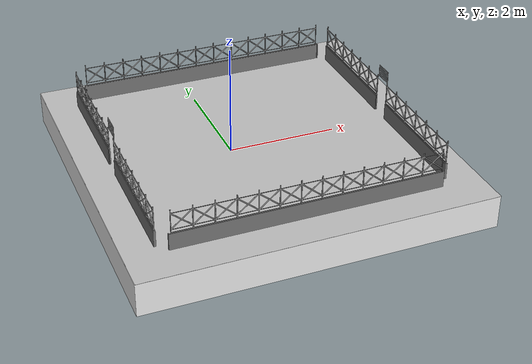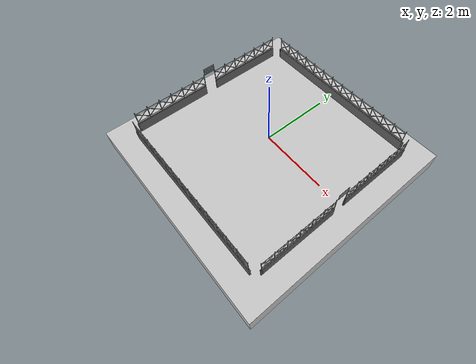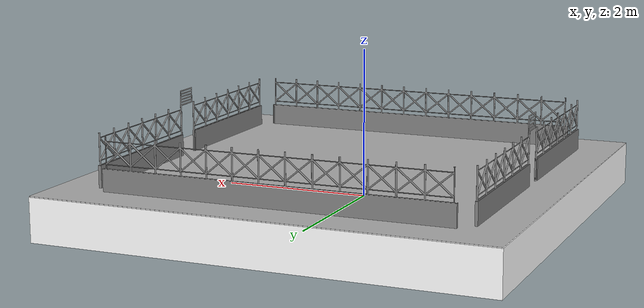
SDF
<?xml version='1.0'?>
<sdf version='1.7'>
  <model name='arene_with_map'>
    <model name='arene'>
      <static>1</static>
      <link name='base_link'>
        <pose>-2.5 2.5 0 1.57 -0 0</pose>
        <visual name='base_visual'>
          <geometry>
            <mesh>
              <uri>model://arene/meshes/arene_base.STL</uri>
              <scale>0.001 0.001 0.001</scale>
            </mesh>
          </geometry>
          <material>
            <ambient>0.9 0.9 0.9 1</ambient>
            <diffuse>1 1 1 1</diffuse>
            <specular>0.5 0.5 0.5 1</specular>
          </material>
        </visual>
        <collision name='base_collision'>
          <pose>3.13 0.3 3.13 1.57 -0 0</pose>
          <geometry>
            <box>
              <size>6.25 6.25 0.6</size>
            </box>
          </geometry>
        </collision>
        <inertial>
          <mass>100</mass>
          <inertia>
            <ixx>0</ixx>
            <ixy>0</ixy>
            <ixz>0</ixz>
            <iyy>0</iyy>
            <iyz>0</iyz>
            <izz>0</izz>
          </inertia>
        </inertial>
      </link>
      <link name='frame_left_link'>
        <pose>-2.38 1.93 0.6 1.57 -0 0</pose>
        <visual name='frame_left_visual'>
          <pose>0.62 0 0 0 -0 0</pose>
          <geometry>
            <mesh>
              <uri>model://arene/meshes/arene_frame.STL</uri>
              <scale>0.001 0.001 0.001</scale>
            </mesh>
          </geometry>
          <material>
            <ambient>0.5 0.5 0.5 1</ambient>
            <diffuse>0.5 0.5 0.5 1</diffuse>
            <specular>0.5 0.5 0.5 1</specular>
          </material>
        </visual>
        <collision name='frame_left_collision'>
          <pose>3 0.3 0 1.57 -0 0</pose>
          <geometry>
            <box>
              <size>5 0.1 0.6</size>
            </box>
          </geometry>
        </collision>
        <inertial>
          <mass>25</mass>
          <inertia>
            <ixx>0</ixx>
            <ixy>0</ixy>
            <ixz>0</ixz>
            <iyy>0</iyy>
            <iyz>0</iyz>
            <izz>0</izz>
          </inertia>
        </inertial>
      </link>
      <link name='frame_right_link'>
        <pose>3.635 -3.15 0.6 1.57 0 3.14</pose>
        <visual name='frame_right_visual'>
          <pose>0.63 0 0 0 -0 0</pose>
          <geometry>
            <mesh>
              <uri>model://arene/meshes/arene_frame.STL</uri>
              <scale>0.001 0.001 0.001</scale>
            </mesh>
          </geometry>
          <material>
            <ambient>0.5 0.5 0.5 1</ambient>
            <diffuse>0.5 0.5 0.5 1</diffuse>
            <specular>0.5 0.5 0.5 1</specular>
          </material>
        </visual>
        <collision name='frame_right_collision'>
          <pose>3 0.3 0 1.57 -0 0</pose>
          <geometry>
            <box>
              <size>5 0.1 0.6</size>
            </box>
          </geometry>
        </collision>
        <inertial>
          <mass>25</mass>
          <inertia>
            <ixx>0</ixx>
            <ixy>0</ixy>
            <ixz>0</ixz>
            <iyy>0</iyy>
            <iyz>0</iyz>
            <izz>0</izz>
          </inertia>
        </inertial>
      </link>
      <link name='frame_front_link'>
        <pose>-2.59 2.38 0.6 1.57 -0 0</pose>
        <visual name='frame_front_visual'>
          <pose>0.63 0 0.63 0 -0 0</pose>
          <geometry>
            <mesh>
              <uri>model://arene/meshes/arene_frame_with_door.STL</uri>
              <scale>0.001 0.001 0.001</scale>
            </mesh>
          </geometry>
          <material>
            <ambient>0.5 0.5 0.5 1</ambient>
            <diffuse>0.5 0.5 0.5 1</diffuse>
            <specular>0.5 0.5 0.5 1</specular>
          </material>
        </visual>
        <collision name='frame_front_collision'>
          <pose>0.66 0.3 3 1.57 1.57 0</pose>
          <geometry>
            <box>
              <size>5 0.1 0.6</size>
            </box>
          </geometry>
        </collision>
        <inertial>
          <mass>25</mass>
          <inertia>
            <ixx>0</ixx>
            <ixy>0</ixy>
            <ixz>0</ixz>
            <iyy>0</iyy>
            <iyz>0</iyz>
            <izz>0</izz>
          </inertia>
        </inertial>
      </link>
      <link name='frame_back_link'>
        <pose>2.5 2.4 0.6 1.57 -0 0</pose>
        <visual name='frame_back_visual'>
          <pose>0.63 0 0.63 0 -0 0</pose>
          <pose>0.63 0 0 0 -0 0</pose>
          <geometry>
            <mesh>
              <uri>model://arene/meshes/arene_frame_with_door.STL</uri>
              <scale>0.001 0.001 0.001</scale>
            </mesh>
          </geometry>
          <material>
            <ambient>0.5 0.5 0.5 1</ambient>
            <diffuse>0.5 0.5 0.5 1</diffuse>
            <specular>0.5 0.5 0.5 1</specular>
          </material>
        </visual>
        <collision name='frame_back_collision'>
          <pose>0.66 0.3 3 1.57 1.57 0</pose>
          <geometry>
            <box>
              <size>5 0.1 0.6</size>
            </box>
          </geometry>
        </collision>
        <inertial>
          <mass>25</mass>
          <inertia>
            <ixx>0</ixx>
            <ixy>0</ixy>
            <ixz>0</ixz>
            <iyy>0</iyy>
            <iyz>0</iyz>
            <izz>0</izz>
          </inertia>
        </inertial>
      </link>
      <pose>-0.314169 0.314779 -0.305 0 -0 0</pose>
    </model>
    <model name='carte'>
      <pose>0.314169 -0.314784 0.305 0 -0 0</pose>
      <static>1</static>
      <link name='carte_link'>
        <pose>0 0 0.001 0 -0 1.5708</pose>
        <visual name='visual_carte'>
          <cast_shadows>0</cast_shadows>
          <geometry>
            <box>
              <size>6.25 6.25 0.001</size>
            </box>
          </geometry>
          <material>
            <script>
              <uri>model://carte/materials/scripts</uri>
              <uri>model://carte/materials/textures</uri>
              <name>carte/carte</name>
            </script>
          </material>
        </visual>
      </link>
    </model>
    <static>0</static>
    <allow_auto_disable>1</allow_auto_disable>
  </model>
</sdf>
